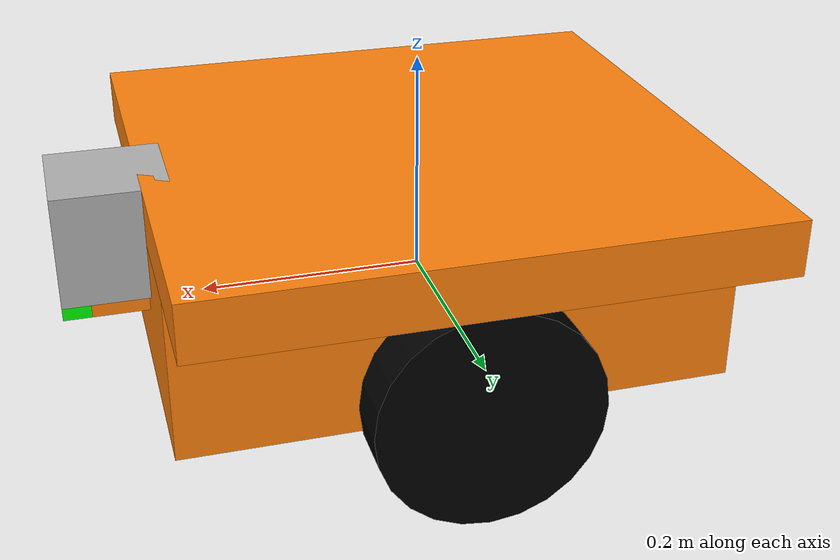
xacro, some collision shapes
<?xml version='1.0'?>

<robot name="table_bot" xmlns:xacro="http://www.ros.org/wiki/xacro">

  <xacro:include filename="$(find udacity_bot)/urdf/table_bot.gazebo" />
  <link name="robot_footprint"></link>

  <joint name="robot_footprint_joint" type="fixed">
    <origin xyz="0 0 0" rpy="0 0 0" />
    <parent link="robot_footprint"/>
    <child link="base" />
  </joint>

  <link name='base'>

    <inertial>
      <mass value="15.0"/>
      <origin xyz="0.0 0 0" rpy=" 0 0 0"/>
      <inertia
          ixx="0.1" ixy="0" ixz="0"
          iyy="0.1" iyz="0"
          izz="0.1"
      />
    </inertial>

    <collision>
      <origin xyz="0 0 0" rpy=" 0 0 0"/>
      <geometry>
        <box size="0.5 0.3 0.15"/>
      </geometry>
    </collision>

    <visual>
      <origin xyz="0 0 0" rpy=" 0 0 0"/>
      <geometry>
        <box size="0.5 0.3 0.15"/>
      </geometry>
      <material name="Orange">
        <color rgba="1.0 0.5088 0.0468 1.0"/>
      </material>
    </visual>

    <collision>
      <origin xyz="-0.19 0 -0.075" rpy=" 0 0 0"/>
      <geometry>
        <sphere radius="0.059"/>
      </geometry>
      <surface>
        <friction>
          <ode>
            <mu>0</mu>
            <mu2>0</mu2>
            <slip1>1.0</slip1>
            <slip2>1.0</slip2>
          </ode>
        </friction>
      </surface>
    </collision>

    <visual>
      <origin xyz="-0.19 0 -0.075" rpy=" 0 0 0"/>
      <geometry>
        <sphere radius="0.06"/>
      </geometry>
      <material name="Grey">
        <color rgba="0.3 0.3 0.3 1.0"/>
      </material>
    </visual>

  <collision>
      <origin xyz="0.19 0 -0.075" rpy=" 0 0 0"/>
      <geometry>
        <sphere radius="0.059"/>
      </geometry>
      <surface>
        <friction>
          <ode>
            <mu>0</mu>
            <mu2>0</mu2>
            <slip1>1.0</slip1>
            <slip2>1.0</slip2>
          </ode>
        </friction>
      </surface>
    </collision>

    <visual>
      <origin xyz="0.19 0 -0.075" rpy=" 0 0 0"/>
      <geometry>
        <sphere radius="0.06"/>
      </geometry>
      <material name="Grey">
        <color rgba="0.3 0.3 0.3 1.0"/>
      </material>
    </visual>

  </link>

  <link name='top_plate'>
    <inertial>
      <mass value="5.0"/>
      <origin xyz="0.0 0 0" rpy=" 0 0 0"/>
      <inertia
          ixx="0.1" ixy="0" ixz="0"
          iyy="0.1" iyz="0"
          izz="0.1"
      />
    </inertial>

    <collision>
      <origin xyz="0 0 0" rpy=" 0 0 0"/>
      <geometry>
        <box size="0.5 0.5 0.05"/>
      </geometry>
    </collision>

    <visual>
      <origin xyz="0 0 0" rpy=" 0 0 0"/>
      <geometry>
        <box size="0.5 0.5 0.05"/>
      </geometry>
      <material name="Orange">
        <color rgba="1.0 0.5088 0.0468 1.0"/>
      </material>
    </visual>

  </link>

  <joint name="top_plate_joint" type="fixed">
    <origin xyz="0 0 0.1" rpy="0 0 0" />
    <parent link="base"/>
    <child link="top_plate" />
  </joint>

  <link name='mount'>
    <inertial>
      <mass value="1.0"/>
      <origin xyz="0.0 0 0" rpy=" 0 0 0"/>
      <inertia
          ixx="0.1" ixy="0" ixz="0"
          iyy="0.1" iyz="0"
          izz="0.1"
      />
    </inertial>

    <collision>
      <origin xyz="0 0 0" rpy=" 0 0 0"/>
      <geometry>
        <box size="0.05 0.05 0.05"/>
      </geometry>
    </collision>

    <visual>
      <origin xyz="0 0 0" rpy=" 0 0 0"/>
      <geometry>
        <box size="0.05 0.05 0.05"/>
      </geometry>
      <material name="Orange">
        <color rgba="1.0 0.5088 0.0468 1.0"/>
      </material>
    </visual>

  </link>

  <joint name="mount_joint" type="fixed">
    <origin xyz="0.275 0 0.025" rpy="0 0 0" />
    <parent link="base"/>
    <child link="mount" />
  </joint>

  <link name='left_wheel'>
    <inertial>
      <mass value="5.0"/>
      <origin xyz="0.0 0 0" rpy=" 0 1.5707 1.5707"/>
      <inertia
          ixx="0.1" ixy="0" ixz="0"
          iyy="0.1" iyz="0"
          izz="0.1"
      />
    </inertial>

    <collision>
      <origin xyz="0 0 0" rpy=" 0 1.5707 1.5707"/>
      <geometry>
        <cylinder length="0.05" radius="0.1"/>
      </geometry>
    </collision>

    <visual>
      <origin xyz="0 0 0" rpy=" 0 1.5707 1.5707"/>
      <geometry>
        <cylinder length="0.05" radius="0.1"/>
      </geometry>
      <material name="Black">
        <color rgba="0 0 0 1.0"/>
      </material>
    </visual>

  </link>

  <joint type="continuous" name="left_wheel_hinge">
    <origin xyz="0.0 0.2 -0.035" rpy="0 0 0"/>
    <child link="left_wheel"/>
    <parent link="base"/>
    <axis xyz="0 1 0" rpy="0 0 0"/>
    <limit effort="10000" velocity="1000"/>
    <joint_properties damping="1.0" friction="1.0"/>
  </joint>

  <link name='right_wheel'>
    <inertial>
      <mass value="5.0"/>
      <origin xyz="0.0 0 0" rpy=" 0 1.5707 1.5707"/>
      <inertia
          ixx="0.1" ixy="0" ixz="0"
          iyy="0.1" iyz="0"
          izz="0.1"
      />
    </inertial>

    <collision>
      <origin xyz="0 0 0" rpy=" 0 1.5707 1.5707"/>
      <geometry>
        <cylinder length="0.05" radius="0.1"/>
      </geometry>
    </collision>

    <visual>
      <origin xyz="0 0 0" rpy=" 0 1.5707 1.5707"/>
      <geometry>
        <cylinder length="0.05" radius="0.1"/>
      </geometry>
      <material name="Black">
        <color rgba="0 0 0 1.0"/>
      </material>
    </visual>

  </link>

  <joint type="continuous" name="right_wheel_hinge">
    <origin xyz="0.0 -0.2 -0.035" rpy="0 0 0"/>
    <child link="right_wheel"/>
    <parent link="base"/>
    <axis xyz="0 1 0" rpy="0 0 0"/>
    <limit effort="10000" velocity="1000"/>
    <joint_properties damping="1.0" friction="1.0"/>
  </joint>

  <link name='camera'>
    <inertial>
      <mass value="0.1"/>
      <origin xyz="0 0 0" rpy=" 0 0 0"/>
      <inertia
          ixx="1e-6" ixy="0" ixz="0"
          iyy="1e-6" iyz="0"
          izz="1e-6"
      />
    </inertial>

    <collision>
      <origin xyz="0 0 0" rpy=" 0 0 0"/>
      <geometry>
        <box size="0.025 0.05 0.05"/>
      </geometry>
    </collision>

    <visual>
      <origin xyz="0 0 0" rpy=" 0 0 0"/>
      <geometry>
        <box size="0.025 0.05 0.05"/>
      </geometry>
      <material name="Green">
        <color rgba="0 1.0 0 1.0"/>
      </material>
    </visual>

  </link>

  <joint type="fixed" name="camera_joint">
    <origin xyz="0.0375 0 0" rpy="0 0 0"/>
    <child link="camera"/>
    <parent link="mount"/>
  </joint>

  <link name='hokuyo'>
    <inertial>
      <mass value="0.1"/>
      <origin xyz="0 0 0" rpy=" 0 0 0"/>
      <inertia
          ixx="1e-6" ixy="0" ixz="0"
          iyy="1e-6" iyz="0"
          izz="1e-6"
      />
    </inertial>

    <collision>
      <origin xyz="0 0 0" rpy=" 0 0 0"/>
      <geometry>
        <box size="0.1 0.1 0.1"/>
      </geometry>
    </collision>

    <visual>
      <origin xyz="0 0 0" rpy=" 0 0 0"/>
      <geometry>
        <mesh filename="package://udacity_bot/meshes/hokuyo.dae"/>
      </geometry>
    </visual>

  </link>

  <joint type="fixed" name="hokuyo_joint">
    <origin xyz="0 0 0.05" rpy="0 0 0"/>
    <child link="hokuyo"/>
    <parent link="mount"/>
  </joint>

</robot>
